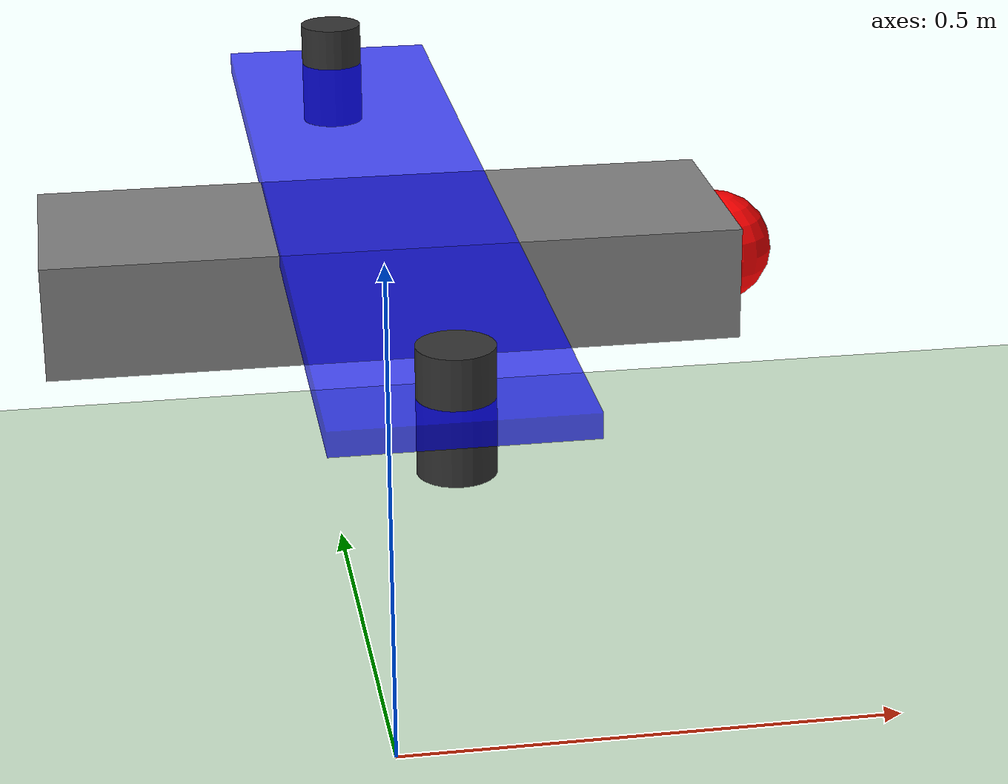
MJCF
<mujoco model="v22_drone">
    <option gravity="0 0 -9.81" timestep="0.001"/>

    <worldbody>
        <light directional="true" diffuse=".8 .8 .8" specular=".2 .2 .2" pos="0 0 5" dir="0 0 -1"/>
        <geom name="floor" type="plane" size="10 10 .1" rgba=".8 .9 .8 1"/>

        <body name="v22_body" pos="0 0 0.5">
            <freejoint name="root"/>

            <geom name="fuselage" type="box" size="0.3 0.1 0.05" rgba="0.5 0.5 0.5 1"/>
            <geom name="nose" type="sphere" size="0.05" pos="0.3 0 0" rgba="1 0 0 1"/>

            <body name="tilt_rotor_assembly" pos="0 0 0.05">
                <joint name="tilt_joint" type="hinge" axis="0 1 0" range="-1.57 1.57" limited="true"/>

                <geom name="wing_geom" type="box" size="0.1 0.5 0.01" rgba="0 0 1 0.7"/>

                <geom name="left_engine" type="cylinder" size="0.03 0.05" pos="0 0.45 0" rgba="0.2 0.2 0.2 1"/>
                <geom name="right_engine" type="cylinder" size="0.03 0.05" pos="0 -0.45 0" rgba="0.2 0.2 0.2 1"/>
            </body>
        </body>
    </worldbody>

    <actuator>
        <motor name="manual_lift" gear="0 0 10 0 0 0" joint="root"/>
    </actuator>
</mujoco>
